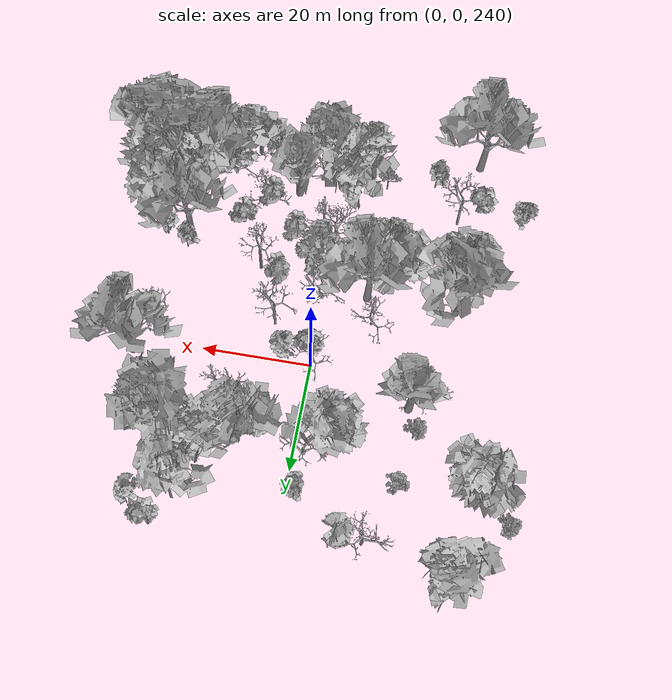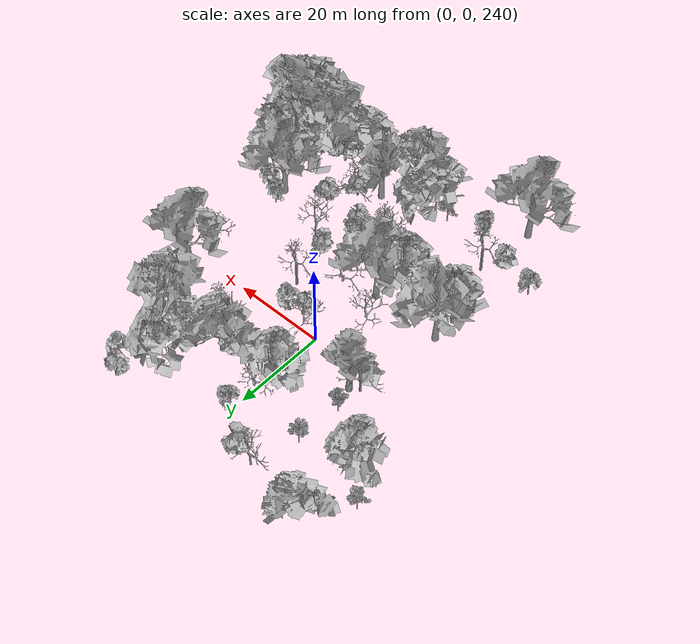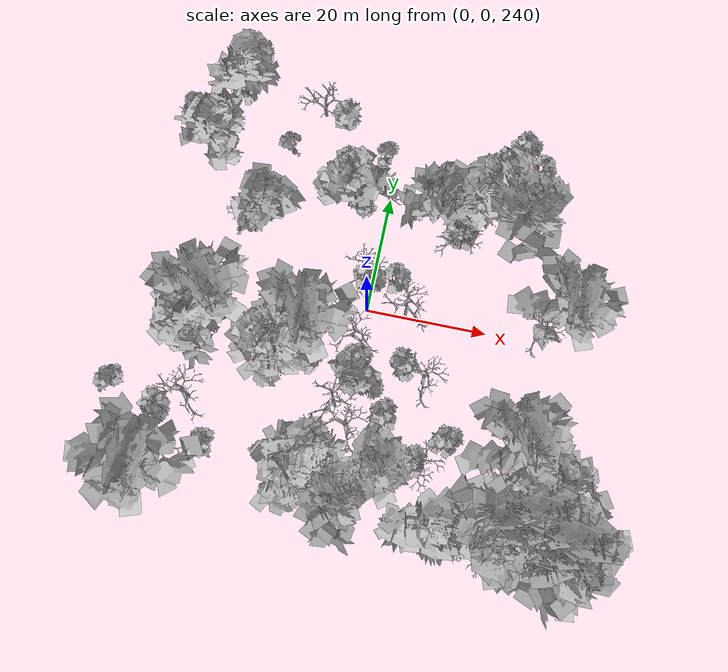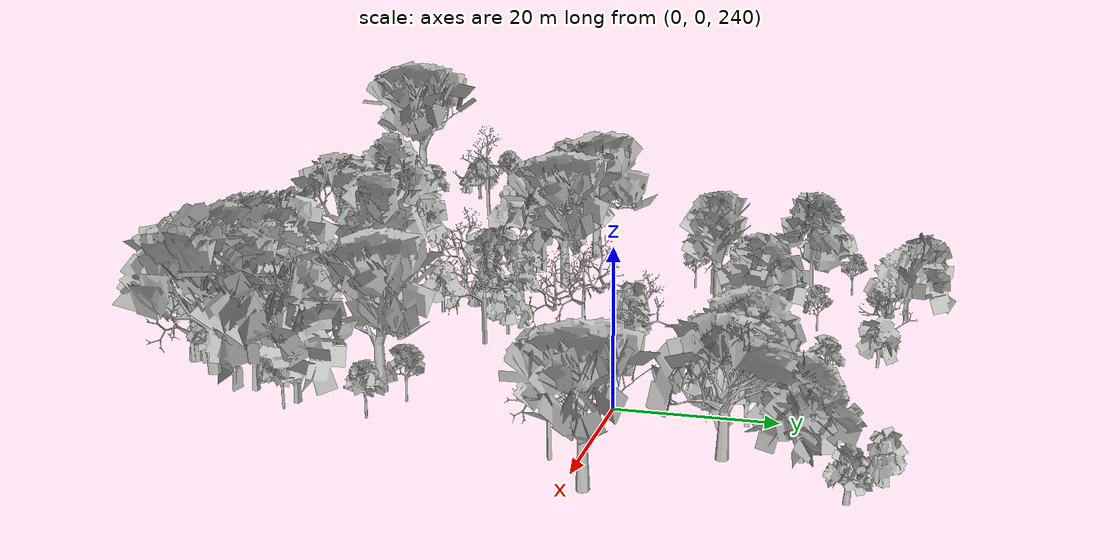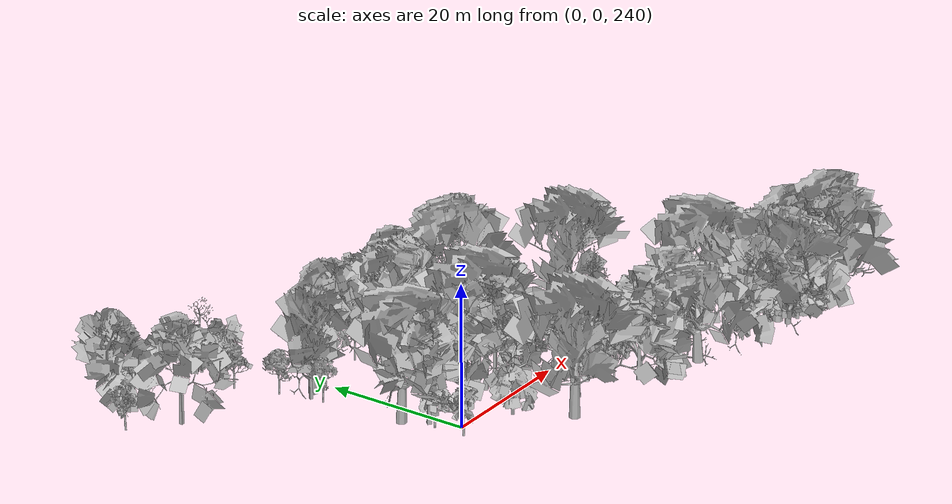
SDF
<sdf version="1.6">
 <world name="default">
  <light name="sun" type="directional">
   <pose>0 0 10 0 -0 0</pose>
   <diffuse>0.8 0.8 0.8 1</diffuse>
   <specular>0.2 0.2 0.2 1</specular>
   <attenuation>
    <range>1000</range>
    <constant>0.9</constant>
    <linear>0.01</linear>
    <quadratic>0.001</quadratic>
   </attenuation>
   <direction>-0.5 0.1 -0.9</direction>
  </light>
  <scene>
   <sky><clouds><speed>12</speed></clouds></sky>
   <ambient>0.4 0.4 0.4 1</ambient>
   <background>0.7 0.7 0.7 1</background>
   <shadows>1</shadows>
  </scene>
  <spherical_coordinates>
   <surface_model>EARTH_WGS84</surface_model>
   <latitude_deg>47.3977</latitude_deg>
   <longitude_deg>8.54559</longitude_deg>
   <elevation>0</elevation>
   <heading_deg>0</heading_deg>
  </spherical_coordinates>
  <physics name="default_physics" default="0" type="ode">
   <ode>
    <solver>
     <type>quick</type>
     <iters>100</iters>
     <sor>1.3</sor>
     <use_dynamic_moi_rescaling>0</use_dynamic_moi_rescaling>
    </solver>
    <constraints>
     <cfm>0</cfm>
     <erp>0.2</erp>
     <contact_max_correcting_vel>100</contact_max_correcting_vel>
     <contact_surface_layer>0.001</contact_surface_layer>
    </constraints>
   </ode>
   <max_step_size>0.002</max_step_size>
   <real_time_factor>1</real_time_factor>
   <real_time_update_rate>500</real_time_update_rate>
  </physics>
  <gravity>0 0 -9.8</gravity>
  <magnetic_field>6e-06 2.3e-05 -4.2e-05</magnetic_field>
  <atmosphere type="adiabatic"/>
  <model name="my_mesh0">
   <pose>29.3973 -32.3156 253.181 0 0 -0.990236</pose>
   <static>1</static>
   <link name="body">
    <visual name="visual">
     <geometry><mesh><uri>model://trees/9.dae</uri><scale>1 1 1</scale></mesh></geometry>
    </visual>
    <collision name="collision">
     <geometry><mesh><uri>model://trees/9.dae</uri><scale>1 1 1</scale></mesh></geometry>
    </collision>
   </link>
  </model>
  <model name="my_mesh1">
   <pose>13.5354 -33.5738 256.813 0 0 -1.50078</pose>
   <static>1</static>
   <link name="body">
    <visual name="visual">
     <geometry><mesh><uri>model://trees/18.dae</uri><scale>1 1 1</scale></mesh></geometry>
    </visual>
    <collision name="collision">
     <geometry><mesh><uri>model://trees/18.dae</uri><scale>1 1 1</scale></mesh></geometry>
    </collision>
   </link>
  </model>
  <model name="my_mesh2">
   <pose>2.16169 -29.9533 256.47 0 -0 0.952976</pose>
   <static>1</static>
   <link name="body">
    <visual name="visual">
     <geometry><mesh><uri>model://trees/19.dae</uri><scale>1 1 1</scale></mesh></geometry>
    </visual>
    <collision name="collision">
     <geometry><mesh><uri>model://trees/19.dae</uri><scale>1 1 1</scale></mesh></geometry>
    </collision>
   </link>
  </model>
  <model name="my_mesh3">
   <pose>25.3439 -29.4933 253.475 0 -0 1.00669</pose>
   <static>1</static>
   <link name="body">
    <visual name="visual">
     <geometry><mesh><uri>model://trees/15.dae</uri><scale>1 1 1</scale></mesh></geometry>
    </visual>
    <collision name="collision">
     <geometry><mesh><uri>model://trees/15.dae</uri><scale>1 1 1</scale></mesh></geometry>
    </collision>
   </link>
  </model>
  <model name="my_mesh4">
   <pose>28.3731 -34.0866 254.223 0 0 -0.948619</pose>
   <static>1</static>
   <link name="body">
    <visual name="visual">
     <geometry><mesh><uri>model://trees/5.dae</uri><scale>1 1 1</scale></mesh></geometry>
    </visual>
    <collision name="collision">
     <geometry><mesh><uri>model://trees/5.dae</uri><scale>1 1 1</scale></mesh></geometry>
    </collision>
   </link>
  </model>
  <model name="my_mesh5">
   <pose>29.9342 -32.0191 252.868 0 -0 0.725675</pose>
   <static>1</static>
   <link name="body">
    <visual name="visual">
     <geometry><mesh><uri>model://trees/2.dae</uri><scale>1 1 1</scale></mesh></geometry>
    </visual>
    <collision name="collision">
     <geometry><mesh><uri>model://trees/2.dae</uri><scale>1 1 1</scale></mesh></geometry>
    </collision>
   </link>
  </model>
  <model name="my_mesh6">
   <pose>23.3303 -32.031 254.628 0 0 -1.36659</pose>
   <static>1</static>
   <link name="body">
    <visual name="visual">
     <geometry><mesh><uri>model://trees/9.dae</uri><scale>1 1 1</scale></mesh></geometry>
    </visual>
    <collision name="collision">
     <geometry><mesh><uri>model://trees/9.dae</uri><scale>1 1 1</scale></mesh></geometry>
    </collision>
   </link>
  </model>
  <model name="my_mesh7">
   <pose>26.8357 -29.52 253.103 0 -0 0.339973</pose>
   <static>1</static>
   <link name="body">
    <visual name="visual">
     <geometry><mesh><uri>model://trees/0.dae</uri><scale>1 1 1</scale></mesh></geometry>
    </visual>
    <collision name="collision">
     <geometry><mesh><uri>model://trees/0.dae</uri><scale>1 1 1</scale></mesh></geometry>
    </collision>
   </link>
  </model>
  <model name="my_mesh8">
   <pose>33.6051 -34.8981 254.263 0 -0 0.280748</pose>
   <static>1</static>
   <link name="body">
    <visual name="visual">
     <geometry><mesh><uri>model://trees/9.dae</uri><scale>1 1 1</scale></mesh></geometry>
    </visual>
    <collision name="collision">
     <geometry><mesh><uri>model://trees/9.dae</uri><scale>1 1 1</scale></mesh></geometry>
    </collision>
   </link>
  </model>
  <model name="my_mesh9">
   <pose>12.0635 -33.56 256.786 0 0 -0.750918</pose>
   <static>1</static>
   <link name="body">
    <visual name="visual">
     <geometry><mesh><uri>model://trees/6.dae</uri><scale>1 1 1</scale></mesh></geometry>
    </visual>
    <collision name="collision">
     <geometry><mesh><uri>model://trees/6.dae</uri><scale>1 1 1</scale></mesh></geometry>
    </collision>
   </link>
  </model>
  <model name="my_mesh10">
   <pose>24.2425 -34.3203 255.132 0 0 -0.202786</pose>
   <static>1</static>
   <link name="body">
    <visual name="visual">
     <geometry><mesh><uri>model://trees/17.dae</uri><scale>1 1 1</scale></mesh></geometry>
    </visual>
    <collision name="collision">
     <geometry><mesh><uri>model://trees/17.dae</uri><scale>1 1 1</scale></mesh></geometry>
    </collision>
   </link>
  </model>
  <model name="my_mesh11">
   <pose>27.1943 -30.6651 253.295 0 0 -0.532978</pose>
   <static>1</static>
   <link name="body">
    <visual name="visual">
     <geometry><mesh><uri>model://trees/19.dae</uri><scale>1 1 1</scale></mesh></geometry>
    </visual>
    <collision name="collision">
     <geometry><mesh><uri>model://trees/19.dae</uri><scale>1 1 1</scale></mesh></geometry>
    </collision>
   </link>
  </model>
  <model name="my_mesh12">
   <pose>25.2791 -28.9186 253.288 0 -0 0.288437</pose>
   <static>1</static>
   <link name="body">
    <visual name="visual">
     <geometry><mesh><uri>model://trees/3.dae</uri><scale>1 1 1</scale></mesh></geometry>
    </visual>
    <collision name="collision">
     <geometry><mesh><uri>model://trees/3.dae</uri><scale>1 1 1</scale></mesh></geometry>
    </collision>
   </link>
  </model>
  <model name="my_mesh13">
   <pose>26.316 -30.4162 253.471 0 -0 1.23142</pose>
   <static>1</static>
   <link name="body">
    <visual name="visual">
     <geometry><mesh><uri>model://trees/2.dae</uri><scale>1 1 1</scale></mesh></geometry>
    </visual>
    <collision name="collision">
     <geometry><mesh><uri>model://trees/2.dae</uri><scale>1 1 1</scale></mesh></geometry>
    </collision>
   </link>
  </model>
  <model name="my_mesh14">
   <pose>15.4166 -33.6952 256.72 0 0 -1.44545</pose>
   <static>1</static>
   <link name="body">
    <visual name="visual">
     <geometry><mesh><uri>model://trees/13.dae</uri><scale>1 1 1</scale></mesh></geometry>
    </visual>
    <collision name="collision">
     <geometry><mesh><uri>model://trees/13.dae</uri><scale>1 1 1</scale></mesh></geometry>
    </collision>
   </link>
  </model>
  <model name="my_mesh15">
   <pose>34.7556 -25.0281 250.431 0 0 -0.568755</pose>
   <static>1</static>
   <link name="body">
    <visual name="visual">
     <geometry><mesh><uri>model://trees/2.dae</uri><scale>1 1 1</scale></mesh></geometry>
    </visual>
    <collision name="collision">
     <geometry><mesh><uri>model://trees/2.dae</uri><scale>1 1 1</scale></mesh></geometry>
    </collision>
   </link>
  </model>
  <model name="my_mesh16">
   <pose>31.6009 -29.2277 251.777 0 0 -1.18603</pose>
   <static>1</static>
   <link name="body">
    <visual name="visual">
     <geometry><mesh><uri>model://trees/9.dae</uri><scale>1 1 1</scale></mesh></geometry>
    </visual>
    <collision name="collision">
     <geometry><mesh><uri>model://trees/9.dae</uri><scale>1 1 1</scale></mesh></geometry>
    </collision>
   </link>
  </model>
  <model name="my_mesh17">
   <pose>20.9339 -34.8507 255.896 0 -0 0.649566</pose>
   <static>1</static>
   <link name="body">
    <visual name="visual">
     <geometry><mesh><uri>model://trees/0.dae</uri><scale>1 1 1</scale></mesh></geometry>
    </visual>
    <collision name="collision">
     <geometry><mesh><uri>model://trees/0.dae</uri><scale>1 1 1</scale></mesh></geometry>
    </collision>
   </link>
  </model>
  <model name="my_mesh18">
   <pose>33.432 -34.1464 253.989 0 -0 1.34274</pose>
   <static>1</static>
   <link name="body">
    <visual name="visual">
     <geometry><mesh><uri>model://trees/16.dae</uri><scale>1 1 1</scale></mesh></geometry>
    </visual>
    <collision name="collision">
     <geometry><mesh><uri>model://trees/16.dae</uri><scale>1 1 1</scale></mesh></geometry>
    </collision>
   </link>
  </model>
  <model name="my_mesh19">
   <pose>34.3925 -30.3513 252.471 0 -0 0.384745</pose>
   <static>1</static>
   <link name="body">
    <visual name="visual">
     <geometry><mesh><uri>model://trees/6.dae</uri><scale>1 1 1</scale></mesh></geometry>
    </visual>
    <collision name="collision">
     <geometry><mesh><uri>model://trees/6.dae</uri><scale>1 1 1</scale></mesh></geometry>
    </collision>
   </link>
  </model>
  <model name="my_mesh20">
   <pose>24.7422 -33.654 254.986 0 -0 0.405412</pose>
   <static>1</static>
   <link name="body">
    <visual name="visual">
     <geometry><mesh><uri>model://trees/13.dae</uri><scale>1 1 1</scale></mesh></geometry>
    </visual>
    <collision name="collision">
     <geometry><mesh><uri>model://trees/13.dae</uri><scale>1 1 1</scale></mesh></geometry>
    </collision>
   </link>
  </model>
  <model name="my_mesh21">
   <pose>33.6361 -28.4734 251.682 0 0 -0.859412</pose>
   <static>1</static>
   <link name="body">
    <visual name="visual">
     <geometry><mesh><uri>model://trees/13.dae</uri><scale>1 1 1</scale></mesh></geometry>
    </visual>
    <collision name="collision">
     <geometry><mesh><uri>model://trees/13.dae</uri><scale>1 1 1</scale></mesh></geometry>
    </collision>
   </link>
  </model>
  <model name="my_mesh22">
   <pose>34.1244 -34.8563 254.327 0 -0 1.04565</pose>
   <static>1</static>
   <link name="body">
    <visual name="visual">
     <geometry><mesh><uri>model://trees/17.dae</uri><scale>1 1 1</scale></mesh></geometry>
    </visual>
    <collision name="collision">
     <geometry><mesh><uri>model://trees/17.dae</uri><scale>1 1 1</scale></mesh></geometry>
    </collision>
   </link>
  </model>
  <model name="my_mesh23">
   <pose>27.8928 -34.6358 254.744 0 0 -0.286216</pose>
   <static>1</static>
   <link name="body">
    <visual name="visual">
     <geometry><mesh><uri>model://trees/4.dae</uri><scale>1 1 1</scale></mesh></geometry>
    </visual>
    <collision name="collision">
     <geometry><mesh><uri>model://trees/4.dae</uri><scale>1 1 1</scale></mesh></geometry>
    </collision>
   </link>
  </model>
  <model name="my_mesh24">
   <pose>33.4213 -33.3952 253.715 0 0 -1.46818</pose>
   <static>1</static>
   <link name="body">
    <visual name="visual">
     <geometry><mesh><uri>model://trees/0.dae</uri><scale>1 1 1</scale></mesh></geometry>
    </visual>
    <collision name="collision">
     <geometry><mesh><uri>model://trees/0.dae</uri><scale>1 1 1</scale></mesh></geometry>
    </collision>
   </link>
  </model>
  <model name="my_mesh25">
   <pose>28.4856 -30.6953 252.901 0 0 -1.12124</pose>
   <static>1</static>
   <link name="body">
    <visual name="visual">
     <geometry><mesh><uri>model://trees/16.dae</uri><scale>1 1 1</scale></mesh></geometry>
    </visual>
    <collision name="collision">
     <geometry><mesh><uri>model://trees/16.dae</uri><scale>1 1 1</scale></mesh></geometry>
    </collision>
   </link>
  </model>
  <model name="my_mesh26">
   <pose>26.3269 -30.5638 253.471 0 -0 0.717491</pose>
   <static>1</static>
   <link name="body">
    <visual name="visual">
     <geometry><mesh><uri>model://trees/13.dae</uri><scale>1 1 1</scale></mesh></geometry>
    </visual>
    <collision name="collision">
     <geometry><mesh><uri>model://trees/13.dae</uri><scale>1 1 1</scale></mesh></geometry>
    </collision>
   </link>
  </model>
  <model name="my_mesh27">
   <pose>25.8426 -18.5224 249.721 0 0 -0.853096</pose>
   <static>1</static>
   <link name="body">
    <visual name="visual">
     <geometry><mesh><uri>model://trees/10.dae</uri><scale>1 1 1</scale></mesh></geometry>
    </visual>
    <collision name="collision">
     <geometry><mesh><uri>model://trees/10.dae</uri><scale>1 1 1</scale></mesh></geometry>
    </collision>
   </link>
  </model>
  <model name="my_mesh28">
   <pose>2.55542 -32.97 257.54 0 -0 0.766422</pose>
   <static>1</static>
   <link name="body">
    <visual name="visual">
     <geometry><mesh><uri>model://trees/8.dae</uri><scale>1 1 1</scale></mesh></geometry>
    </visual>
    <collision name="collision">
     <geometry><mesh><uri>model://trees/8.dae</uri><scale>1 1 1</scale></mesh></geometry>
    </collision>
   </link>
  </model>
  <model name="my_mesh29">
   <pose>30.4088 -34.6982 253.979 0 0 -0.36452</pose>
   <static>1</static>
   <link name="body">
    <visual name="visual">
     <geometry><mesh><uri>model://trees/2.dae</uri><scale>1 1 1</scale></mesh></geometry>
    </visual>
    <collision name="collision">
     <geometry><mesh><uri>model://trees/2.dae</uri><scale>1 1 1</scale></mesh></geometry>
    </collision>
   </link>
  </model>
  <model name="my_mesh30">
   <pose>34.3323 -32.5096 253.377 0 -0 0.220051</pose>
   <static>1</static>
   <link name="body">
    <visual name="visual">
     <geometry><mesh><uri>model://trees/10.dae</uri><scale>1 1 1</scale></mesh></geometry>
    </visual>
    <collision name="collision">
     <geometry><mesh><uri>model://trees/10.dae</uri><scale>1 1 1</scale></mesh></geometry>
    </collision>
   </link>
  </model>
  <model name="my_mesh31">
   <pose>18.1305 -31.3046 255.45 0 0 -1.56268</pose>
   <static>1</static>
   <link name="body">
    <visual name="visual">
     <geometry><mesh><uri>model://trees/4.dae</uri><scale>1 1 1</scale></mesh></geometry>
    </visual>
    <collision name="collision">
     <geometry><mesh><uri>model://trees/4.dae</uri><scale>1 1 1</scale></mesh></geometry>
    </collision>
   </link>
  </model>
  <model name="my_mesh32">
   <pose>32.7875 -24.4841 250.435 0 0 -1.03852</pose>
   <static>1</static>
   <link name="body">
    <visual name="visual">
     <geometry><mesh><uri>model://trees/14.dae</uri><scale>1 1 1</scale></mesh></geometry>
    </visual>
    <collision name="collision">
     <geometry><mesh><uri>model://trees/14.dae</uri><scale>1 1 1</scale></mesh></geometry>
    </collision>
   </link>
  </model>
  <model name="my_mesh33">
   <pose>29.6468 -29.866 252.292 0 -0 0.434812</pose>
   <static>1</static>
   <link name="body">
    <visual name="visual">
     <geometry><mesh><uri>model://trees/10.dae</uri><scale>1 1 1</scale></mesh></geometry>
    </visual>
    <collision name="collision">
     <geometry><mesh><uri>model://trees/10.dae</uri><scale>1 1 1</scale></mesh></geometry>
    </collision>
   </link>
  </model>
  <model name="my_mesh34">
   <pose>12.8056 -25.2401 254.175 0 0 -1.47299</pose>
   <static>1</static>
   <link name="body">
    <visual name="visual">
     <geometry><mesh><uri>model://trees/19.dae</uri><scale>1 1 1</scale></mesh></geometry>
    </visual>
    <collision name="collision">
     <geometry><mesh><uri>model://trees/19.dae</uri><scale>1 1 1</scale></mesh></geometry>
    </collision>
   </link>
  </model>
  <model name="my_mesh35">
   <pose>1.12841 -21.1798 253.655 0 -0 0.554213</pose>
   <static>1</static>
   <link name="body">
    <visual name="visual">
     <geometry><mesh><uri>model://trees/19.dae</uri><scale>1 1 1</scale></mesh></geometry>
    </visual>
    <collision name="collision">
     <geometry><mesh><uri>model://trees/19.dae</uri><scale>1 1 1</scale></mesh></geometry>
    </collision>
   </link>
  </model>
  <model name="my_mesh36">
   <pose>-6.45293 -12.5884 253.118 0 -0 0.015053</pose>
   <static>1</static>
   <link name="body">
    <visual name="visual">
     <geometry><mesh><uri>model://trees/0.dae</uri><scale>1 1 1</scale></mesh></geometry>
    </visual>
    <collision name="collision">
     <geometry><mesh><uri>model://trees/0.dae</uri><scale>1 1 1</scale></mesh></geometry>
    </collision>
   </link>
  </model>
  <model name="my_mesh37">
   <pose>-20.1757 6.46585 250.135 0 0 -0.554399</pose>
   <static>1</static>
   <link name="body">
    <visual name="visual">
     <geometry><mesh><uri>model://trees/3.dae</uri><scale>1 1 1</scale></mesh></geometry>
    </visual>
    <collision name="collision">
     <geometry><mesh><uri>model://trees/3.dae</uri><scale>1 1 1</scale></mesh></geometry>
    </collision>
   </link>
  </model>
  <model name="my_mesh38">
   <pose>7.8393 -10.5283 251.01 0 -0 1.50555</pose>
   <static>1</static>
   <link name="body">
    <visual name="visual">
     <geometry><mesh><uri>model://trees/4.dae</uri><scale>1 1 1</scale></mesh></geometry>
    </visual>
    <collision name="collision">
     <geometry><mesh><uri>model://trees/4.dae</uri><scale>1 1 1</scale></mesh></geometry>
    </collision>
   </link>
  </model>
  <model name="my_mesh39">
   <pose>-9.62493 30.5244 244.583 0 -0 0.782857</pose>
   <static>1</static>
   <link name="body">
    <visual name="visual">
     <geometry><mesh><uri>model://trees/5.dae</uri><scale>1 1 1</scale></mesh></geometry>
    </visual>
    <collision name="collision">
     <geometry><mesh><uri>model://trees/5.dae</uri><scale>1 1 1</scale></mesh></geometry>
    </collision>
   </link>
  </model>
  <model name="my_mesh40">
   <pose>-2.25926 18.8097 245.871 0 -0 1.3117</pose>
   <static>1</static>
   <link name="body">
    <visual name="visual">
     <geometry><mesh><uri>model://trees/18.dae</uri><scale>1 1 1</scale></mesh></geometry>
    </visual>
    <collision name="collision">
     <geometry><mesh><uri>model://trees/18.dae</uri><scale>1 1 1</scale></mesh></geometry>
    </collision>
   </link>
  </model>
  <model name="my_mesh41">
   <pose>-17.3474 22.6517 246.344 0 -0 0.896172</pose>
   <static>1</static>
   <link name="body">
    <visual name="visual">
     <geometry><mesh><uri>model://trees/3.dae</uri><scale>1 1 1</scale></mesh></geometry>
    </visual>
    <collision name="collision">
     <geometry><mesh><uri>model://trees/3.dae</uri><scale>1 1 1</scale></mesh></geometry>
    </collision>
   </link>
  </model>
  <model name="my_mesh42">
   <pose>-25.2197 -13.8485 254.703 0 0 -0.128515</pose>
   <static>1</static>
   <link name="body">
    <visual name="visual">
     <geometry><mesh><uri>model://trees/2.dae</uri><scale>1 1 1</scale></mesh></geometry>
    </visual>
    <collision name="collision">
     <geometry><mesh><uri>model://trees/2.dae</uri><scale>1 1 1</scale></mesh></geometry>
    </collision>
   </link>
  </model>
  <model name="my_mesh43">
   <pose>0.609967 -14.452 252.371 0 0 -1.5378</pose>
   <static>1</static>
   <link name="body">
    <visual name="visual">
     <geometry><mesh><uri>model://trees/7.dae</uri><scale>1 1 1</scale></mesh></geometry>
    </visual>
    <collision name="collision">
     <geometry><mesh><uri>model://trees/7.dae</uri><scale>1 1 1</scale></mesh></geometry>
    </collision>
   </link>
  </model>
  <model name="my_mesh44">
   <pose>-29.9743 20.7977 247.186 0 -0 0.804215</pose>
   <static>1</static>
   <link name="body">
    <visual name="visual">
     <geometry><mesh><uri>model://trees/15.dae</uri><scale>1 1 1</scale></mesh></geometry>
    </visual>
    <collision name="collision">
     <geometry><mesh><uri>model://trees/15.dae</uri><scale>1 1 1</scale></mesh></geometry>
    </collision>
   </link>
  </model>
  <model name="my_mesh45">
   <pose>19.2746 -29.6999 254.951 0 -0 1.13894</pose>
   <static>1</static>
   <link name="body">
    <visual name="visual">
     <geometry><mesh><uri>model://trees/19.dae</uri><scale>1 1 1</scale></mesh></geometry>
    </visual>
    <collision name="collision">
     <geometry><mesh><uri>model://trees/19.dae</uri><scale>1 1 1</scale></mesh></geometry>
    </collision>
   </link>
  </model>
  <model name="my_mesh46">
   <pose>-16.9708 -28.7122 259.541 0 -0 0.901331</pose>
   <static>1</static>
   <link name="body">
    <visual name="visual">
     <geometry><mesh><uri>model://trees/6.dae</uri><scale>1 1 1</scale></mesh></geometry>
    </visual>
    <collision name="collision">
     <geometry><mesh><uri>model://trees/6.dae</uri><scale>1 1 1</scale></mesh></geometry>
    </collision>
   </link>
  </model>
  <model name="my_mesh47">
   <pose>-1.00566 -18.6346 253.454 0 0 -0.362233</pose>
   <static>1</static>
   <link name="body">
    <visual name="visual">
     <geometry><mesh><uri>model://trees/17.dae</uri><scale>1 1 1</scale></mesh></geometry>
    </visual>
    <collision name="collision">
     <geometry><mesh><uri>model://trees/17.dae</uri><scale>1 1 1</scale></mesh></geometry>
    </collision>
   </link>
  </model>
  <model name="my_mesh48">
   <pose>24.3882 28.9452 241.746 0 0 -1.29703</pose>
   <static>1</static>
   <link name="body">
    <visual name="visual">
     <geometry><mesh><uri>model://trees/0.dae</uri><scale>1 1 1</scale></mesh></geometry>
    </visual>
    <collision name="collision">
     <geometry><mesh><uri>model://trees/0.dae</uri><scale>1 1 1</scale></mesh></geometry>
    </collision>
   </link>
  </model>
  <model name="my_mesh49">
   <pose>-19.5252 8.8118 249.71 0 0 -1.31164</pose>
   <static>1</static>
   <link name="body">
    <visual name="visual">
     <geometry><mesh><uri>model://trees/17.dae</uri><scale>1 1 1</scale></mesh></geometry>
    </visual>
    <collision name="collision">
     <geometry><mesh><uri>model://trees/17.dae</uri><scale>1 1 1</scale></mesh></geometry>
    </collision>
   </link>
  </model>
  <model name="my_mesh50">
   <pose>6.13391 16.3961 245.823 0 -0 0.711641</pose>
   <static>1</static>
   <link name="body">
    <visual name="visual">
     <geometry><mesh><uri>model://trees/1.dae</uri><scale>1 1 1</scale></mesh></geometry>
    </visual>
    <collision name="collision">
     <geometry><mesh><uri>model://trees/1.dae</uri><scale>1 1 1</scale></mesh></geometry>
    </collision>
   </link>
  </model>
  <model name="my_mesh51">
   <pose>-27.4351 33.4992 245.54 0 0 -1.00539</pose>
   <static>1</static>
   <link name="body">
    <visual name="visual">
     <geometry><mesh><uri>model://trees/13.dae</uri><scale>1 1 1</scale></mesh></geometry>
    </visual>
    <collision name="collision">
     <geometry><mesh><uri>model://trees/13.dae</uri><scale>1 1 1</scale></mesh></geometry>
    </collision>
   </link>
  </model>
  <model name="my_mesh52">
   <pose>-5.30969 16.6142 246.717 0 -0 1.37014</pose>
   <static>1</static>
   <link name="body">
    <visual name="visual">
     <geometry><mesh><uri>model://trees/14.dae</uri><scale>1 1 1</scale></mesh></geometry>
    </visual>
    <collision name="collision">
     <geometry><mesh><uri>model://trees/14.dae</uri><scale>1 1 1</scale></mesh></geometry>
    </collision>
   </link>
  </model>
  <model name="my_mesh53">
   <pose>-8.28703 -8.04656 252.512 0 0 -1.06988</pose>
   <static>1</static>
   <link name="body">
    <visual name="visual">
     <geometry><mesh><uri>model://trees/10.dae</uri><scale>1 1 1</scale></mesh></geometry>
    </visual>
    <collision name="collision">
     <geometry><mesh><uri>model://trees/10.dae</uri><scale>1 1 1</scale></mesh></geometry>
    </collision>
   </link>
  </model>
  <model name="my_mesh54">
   <pose>3.07031 -14.3789 252.053 0 0 -0.994216</pose>
   <static>1</static>
   <link name="body">
    <visual name="visual">
     <geometry><mesh><uri>model://trees/4.dae</uri><scale>1 1 1</scale></mesh></geometry>
    </visual>
    <collision name="collision">
     <geometry><mesh><uri>model://trees/4.dae</uri><scale>1 1 1</scale></mesh></geometry>
    </collision>
   </link>
  </model>
  <model name="my_mesh55">
   <pose>-0.7369 3.7235 249.757 0 0 -0.119361</pose>
   <static>1</static>
   <link name="body">
    <visual name="visual">
     <geometry><mesh><uri>model://trees/18.dae</uri><scale>1 1 1</scale></mesh></geometry>
    </visual>
    <collision name="collision">
     <geometry><mesh><uri>model://trees/18.dae</uri><scale>1 1 1</scale></mesh></geometry>
    </collision>
   </link>
  </model>
  <model name="my_mesh56">
   <pose>6.20823 -18.9254 252.608 0 -0 0.889864</pose>
   <static>1</static>
   <link name="body">
    <visual name="visual">
     <geometry><mesh><uri>model://trees/4.dae</uri><scale>1 1 1</scale></mesh></geometry>
    </visual>
    <collision name="collision">
     <geometry><mesh><uri>model://trees/4.dae</uri><scale>1 1 1</scale></mesh></geometry>
    </collision>
   </link>
  </model>
  <model name="my_mesh57">
   <pose>11.1343 -12.1996 250.751 0 -0 0.25447</pose>
   <static>1</static>
   <link name="body">
    <visual name="visual">
     <geometry><mesh><uri>model://trees/16.dae</uri><scale>1 1 1</scale></mesh></geometry>
    </visual>
    <collision name="collision">
     <geometry><mesh><uri>model://trees/16.dae</uri><scale>1 1 1</scale></mesh></geometry>
    </collision>
   </link>
  </model>
  <model name="my_mesh58">
   <pose>-23.2208 -7.5719 252.767 0 0 -0.488324</pose>
   <static>1</static>
   <link name="body">
    <visual name="visual">
     <geometry><mesh><uri>model://trees/10.dae</uri><scale>1 1 1</scale></mesh></geometry>
    </visual>
    <collision name="collision">
     <geometry><mesh><uri>model://trees/10.dae</uri><scale>1 1 1</scale></mesh></geometry>
    </collision>
   </link>
  </model>
  <model name="my_mesh59">
   <pose>-24.2579 -32.7876 261.18 0 0 -1.35864</pose>
   <static>1</static>
   <link name="body">
    <visual name="visual">
     <geometry><mesh><uri>model://trees/10.dae</uri><scale>1 1 1</scale></mesh></geometry>
    </visual>
    <collision name="collision">
     <geometry><mesh><uri>model://trees/10.dae</uri><scale>1 1 1</scale></mesh></geometry>
    </collision>
   </link>
  </model>
  <model name="my_mesh60">
   <pose>20.8158 32.267 242.29 0 0 -0.234025</pose>
   <static>1</static>
   <link name="body">
    <visual name="visual">
     <geometry><mesh><uri>model://trees/4.dae</uri><scale>1 1 1</scale></mesh></geometry>
    </visual>
    <collision name="collision">
     <geometry><mesh><uri>model://trees/4.dae</uri><scale>1 1 1</scale></mesh></geometry>
    </collision>
   </link>
  </model>
  <model name="my_mesh61">
   <pose>11.4616 -24.8574 253.877 0 -0 0.706532</pose>
   <static>1</static>
   <link name="body">
    <visual name="visual">
     <geometry><mesh><uri>model://trees/4.dae</uri><scale>1 1 1</scale></mesh></geometry>
    </visual>
    <collision name="collision">
     <geometry><mesh><uri>model://trees/4.dae</uri><scale>1 1 1</scale></mesh></geometry>
    </collision>
   </link>
  </model>
  <model name="my_mesh62">
   <pose>8.07388 16.6243 245.787 0 0 -0.458561</pose>
   <static>1</static>
   <link name="body">
    <visual name="visual">
     <geometry><mesh><uri>model://trees/8.dae</uri><scale>1 1 1</scale></mesh></geometry>
    </visual>
    <collision name="collision">
     <geometry><mesh><uri>model://trees/8.dae</uri><scale>1 1 1</scale></mesh></geometry>
    </collision>
   </link>
  </model>
  <model name="my_mesh63">
   <pose>-32.1127 -22.8456 259.203 0 0 -0.185679</pose>
   <static>1</static>
   <link name="body">
    <visual name="visual">
     <geometry><mesh><uri>model://trees/6.dae</uri><scale>1 1 1</scale></mesh></geometry>
    </visual>
    <collision name="collision">
     <geometry><mesh><uri>model://trees/6.dae</uri><scale>1 1 1</scale></mesh></geometry>
    </collision>
   </link>
  </model>
  <model name="my_mesh64">
   <pose>-23.6193 -11.9299 253.999 0 -0 0.041726</pose>
   <static>1</static>
   <link name="body">
    <visual name="visual">
     <geometry><mesh><uri>model://trees/14.dae</uri><scale>1 1 1</scale></mesh></geometry>
    </visual>
    <collision name="collision">
     <geometry><mesh><uri>model://trees/14.dae</uri><scale>1 1 1</scale></mesh></geometry>
    </collision>
   </link>
  </model>
  <model name="my_mesh65">
   <pose>27.7664 -0.039108 244.801 0 0 -0.154257</pose>
   <static>1</static>
   <link name="body">
    <visual name="visual">
     <geometry><mesh><uri>model://trees/16.dae</uri><scale>1 1 1</scale></mesh></geometry>
    </visual>
    <collision name="collision">
     <geometry><mesh><uri>model://trees/16.dae</uri><scale>1 1 1</scale></mesh></geometry>
    </collision>
   </link>
  </model>
  <model name="my_mesh66">
   <pose>0.815448 -11.0154 252.109 0 -0 0.391143</pose>
   <static>1</static>
   <link name="body">
    <visual name="visual">
     <geometry><mesh><uri>model://trees/0.dae</uri><scale>1 1 1</scale></mesh></geometry>
    </visual>
    <collision name="collision">
     <geometry><mesh><uri>model://trees/0.dae</uri><scale>1 1 1</scale></mesh></geometry>
    </collision>
   </link>
  </model>
  <model name="my_mesh67">
   <pose>-1.64761 24.7532 244.497 0 -0 0.5509</pose>
   <static>1</static>
   <link name="body">
    <visual name="visual">
     <geometry><mesh><uri>model://trees/6.dae</uri><scale>1 1 1</scale></mesh></geometry>
    </visual>
    <collision name="collision">
     <geometry><mesh><uri>model://trees/6.dae</uri><scale>1 1 1</scale></mesh></geometry>
    </collision>
   </link>
  </model>
  <model name="my_mesh68">
   <pose>-34.3639 26.0727 246.635 0 0 -0.890651</pose>
   <static>1</static>
   <link name="body">
    <visual name="visual">
     <geometry><mesh><uri>model://trees/3.dae</uri><scale>1 1 1</scale></mesh></geometry>
    </visual>
    <collision name="collision">
     <geometry><mesh><uri>model://trees/3.dae</uri><scale>1 1 1</scale></mesh></geometry>
    </collision>
   </link>
  </model>
  <model name="my_mesh69">
   <pose>22.6841 16.462 244.435 0 -0 0.957913</pose>
   <static>1</static>
   <link name="body">
    <visual name="visual">
     <geometry><mesh><uri>model://trees/9.dae</uri><scale>1 1 1</scale></mesh></geometry>
    </visual>
    <collision name="collision">
     <geometry><mesh><uri>model://trees/9.dae</uri><scale>1 1 1</scale></mesh></geometry>
    </collision>
   </link>
  </model>
  <model name="my_mesh70">
   <pose>12.9964 11.6869 246.538 0 0 -0.946601</pose>
   <static>1</static>
   <link name="body">
    <visual name="visual">
     <geometry><mesh><uri>model://trees/17.dae</uri><scale>1 1 1</scale></mesh></geometry>
    </visual>
    <collision name="collision">
     <geometry><mesh><uri>model://trees/17.dae</uri><scale>1 1 1</scale></mesh></geometry>
    </collision>
   </link>
  </model>
  <model name="my_mesh71">
   <pose>13.0461 13.0533 246.379 0 -0 0.495902</pose>
   <static>1</static>
   <link name="body">
    <visual name="visual">
     <geometry><mesh><uri>model://trees/4.dae</uri><scale>1 1 1</scale></mesh></geometry>
    </visual>
    <collision name="collision">
     <geometry><mesh><uri>model://trees/4.dae</uri><scale>1 1 1</scale></mesh></geometry>
    </collision>
   </link>
  </model>
  <model name="my_mesh72">
   <pose>-27.0257 31.2428 245.9 0 -0 0.039135</pose>
   <static>1</static>
   <link name="body">
    <visual name="visual">
     <geometry><mesh><uri>model://trees/0.dae</uri><scale>1 1 1</scale></mesh></geometry>
    </visual>
    <collision name="collision">
     <geometry><mesh><uri>model://trees/0.dae</uri><scale>1 1 1</scale></mesh></geometry>
    </collision>
   </link>
  </model>
  <model name="my_mesh73">
   <pose>11.9318 13.5135 246.27 0 0 -0.785419</pose>
   <static>1</static>
   <link name="body">
    <visual name="visual">
     <geometry><mesh><uri>model://trees/2.dae</uri><scale>1 1 1</scale></mesh></geometry>
    </visual>
    <collision name="collision">
     <geometry><mesh><uri>model://trees/2.dae</uri><scale>1 1 1</scale></mesh></geometry>
    </collision>
   </link>
  </model>
  <model name="my_mesh74">
   <pose>-11.6233 -11.7682 253.554 0 -0 1.31398</pose>
   <static>1</static>
   <link name="body">
    <visual name="visual">
     <geometry><mesh><uri>model://trees/14.dae</uri><scale>1 1 1</scale></mesh></geometry>
    </visual>
    <collision name="collision">
     <geometry><mesh><uri>model://trees/14.dae</uri><scale>1 1 1</scale></mesh></geometry>
    </collision>
   </link>
  </model>
  <model name="my_mesh75">
   <pose>-2.44174 -27.8895 256.181 0 0 -0.34088</pose>
   <static>1</static>
   <link name="body">
    <visual name="visual">
     <geometry><mesh><uri>model://trees/13.dae</uri><scale>1 1 1</scale></mesh></geometry>
    </visual>
    <collision name="collision">
     <geometry><mesh><uri>model://trees/13.dae</uri><scale>1 1 1</scale></mesh></geometry>
    </collision>
   </link>
  </model>
  <model name="my_mesh76">
   <pose>13.0008 19.2082 244.895 0 0 -0.665355</pose>
   <static>1</static>
   <link name="body">
    <visual name="visual">
     <geometry><mesh><uri>model://trees/17.dae</uri><scale>1 1 1</scale></mesh></geometry>
    </visual>
    <collision name="collision">
     <geometry><mesh><uri>model://trees/17.dae</uri><scale>1 1 1</scale></mesh></geometry>
    </collision>
   </link>
  </model>
  <model name="my_mesh77">
   <pose>-3.8426 13.8068 247.338 0 0 -1.34414</pose>
   <static>1</static>
   <link name="body">
    <visual name="visual">
     <geometry><mesh><uri>model://trees/6.dae</uri><scale>1 1 1</scale></mesh></geometry>
    </visual>
    <collision name="collision">
     <geometry><mesh><uri>model://trees/6.dae</uri><scale>1 1 1</scale></mesh></geometry>
    </collision>
   </link>
  </model>
  <model name="my_mesh78">
   <pose>-13.4701 31.0525 244.7 0 0 -1.53538</pose>
   <static>1</static>
   <link name="body">
    <visual name="visual">
     <geometry><mesh><uri>model://trees/17.dae</uri><scale>1 1 1</scale></mesh></geometry>
    </visual>
    <collision name="collision">
     <geometry><mesh><uri>model://trees/17.dae</uri><scale>1 1 1</scale></mesh></geometry>
    </collision>
   </link>
  </model>
  <model name="my_mesh79">
   <pose>30.2885 -18.356 248.443 0 0 -0.930762</pose>
   <static>1</static>
   <link name="body">
    <visual name="visual">
     <geometry><mesh><uri>model://trees/2.dae</uri><scale>1 1 1</scale></mesh></geometry>
    </visual>
    <collision name="collision">
     <geometry><mesh><uri>model://trees/2.dae</uri><scale>1 1 1</scale></mesh></geometry>
    </collision>
   </link>
  </model>
  <model name="my_mesh80">
   <pose>15.9672 -20.6351 252.402 0 -0 0.21268</pose>
   <static>1</static>
   <link name="body">
    <visual name="visual">
     <geometry><mesh><uri>model://trees/4.dae</uri><scale>1 1 1</scale></mesh></geometry>
    </visual>
    <collision name="collision">
     <geometry><mesh><uri>model://trees/4.dae</uri><scale>1 1 1</scale></mesh></geometry>
    </collision>
   </link>
  </model>
  <model name="my_mesh81">
   <pose>27.1151 -34.7492 254.844 0 0 -0.825919</pose>
   <static>1</static>
   <link name="body">
    <visual name="visual">
     <geometry><mesh><uri>model://trees/1.dae</uri><scale>1 1 1</scale></mesh></geometry>
    </visual>
    <collision name="collision">
     <geometry><mesh><uri>model://trees/1.dae</uri><scale>1 1 1</scale></mesh></geometry>
    </collision>
   </link>
  </model>
  <model name="my_mesh82">
   <pose>-21.5384 -22.4111 258.151 0 -0 0.894486</pose>
   <static>1</static>
   <link name="body">
    <visual name="visual">
     <geometry><mesh><uri>model://trees/16.dae</uri><scale>1 1 1</scale></mesh></geometry>
    </visual>
    <collision name="collision">
     <geometry><mesh><uri>model://trees/16.dae</uri><scale>1 1 1</scale></mesh></geometry>
    </collision>
   </link>
  </model>
  <model name="my_mesh83">
   <pose>-4.95125 -29.258 257.087 0 0 -0.094363</pose>
   <static>1</static>
   <link name="body">
    <visual name="visual">
     <geometry><mesh><uri>model://trees/15.dae</uri><scale>1 1 1</scale></mesh></geometry>
    </visual>
    <collision name="collision">
     <geometry><mesh><uri>model://trees/15.dae</uri><scale>1 1 1</scale></mesh></geometry>
    </collision>
   </link>
  </model>
  <model name="my_mesh84">
   <pose>14.2694 17.8218 244.921 0 0 -0.64669</pose>
   <static>1</static>
   <link name="body">
    <visual name="visual">
     <geometry><mesh><uri>model://trees/13.dae</uri><scale>1 1 1</scale></mesh></geometry>
    </visual>
    <collision name="collision">
     <geometry><mesh><uri>model://trees/13.dae</uri><scale>1 1 1</scale></mesh></geometry>
    </collision>
   </link>
  </model>
  <model name="my_mesh85">
   <pose>18.177 24.0305 243.076 0 -0 0.661529</pose>
   <static>1</static>
   <link name="body">
    <visual name="visual">
     <geometry><mesh><uri>model://trees/12.dae</uri><scale>1 1 1</scale></mesh></geometry>
    </visual>
    <collision name="collision">
     <geometry><mesh><uri>model://trees/12.dae</uri><scale>1 1 1</scale></mesh></geometry>
    </collision>
   </link>
  </model>
  <model name="my_mesh86">
   <pose>6.86842 -26.7501 254.941 0 -0 0.392699</pose>
   <static>1</static>
   <link name="body">
    <visual name="visual">
     <geometry><mesh><uri>model://trees/11.dae</uri><scale>1 1 1</scale></mesh></geometry>
    </visual>
    <collision name="collision">
     <geometry><mesh><uri>model://trees/11.dae</uri><scale>1 1 1</scale></mesh></geometry>
    </collision>
   </link>
  </model>
  <model name="my_mesh87">
   <pose>-8.67406 -28.1783 257.994 0 0 -1.47703</pose>
   <static>1</static>
   <link name="body">
    <visual name="visual">
     <geometry><mesh><uri>model://trees/3.dae</uri><scale>1 1 1</scale></mesh></geometry>
    </visual>
    <collision name="collision">
     <geometry><mesh><uri>model://trees/3.dae</uri><scale>1 1 1</scale></mesh></geometry>
    </collision>
   </link>
  </model>
  <model name="my_mesh88">
   <pose>-0.593115 -7.25936 251.812 0 -0 1.22401</pose>
   <static>1</static>
   <link name="body">
    <visual name="visual">
     <geometry><mesh><uri>model://trees/19.dae</uri><scale>1 1 1</scale></mesh></geometry>
    </visual>
    <collision name="collision">
     <geometry><mesh><uri>model://trees/19.dae</uri><scale>1 1 1</scale></mesh></geometry>
    </collision>
   </link>
  </model>
  <model name="my_mesh89">
   <pose>-19.0148 14.1651 248.597 0 0 -0.100294</pose>
   <static>1</static>
   <link name="body">
    <visual name="visual">
     <geometry><mesh><uri>model://trees/3.dae</uri><scale>1 1 1</scale></mesh></geometry>
    </visual>
    <collision name="collision">
     <geometry><mesh><uri>model://trees/3.dae</uri><scale>1 1 1</scale></mesh></geometry>
    </collision>
   </link>
  </model>
  <model name="my_mesh90">
   <pose>-9.66741 -3.64068 251.673 0 -0 0.081845</pose>
   <static>1</static>
   <link name="body">
    <visual name="visual">
     <geometry><mesh><uri>model://trees/19.dae</uri><scale>1 1 1</scale></mesh></geometry>
    </visual>
    <collision name="collision">
     <geometry><mesh><uri>model://trees/19.dae</uri><scale>1 1 1</scale></mesh></geometry>
    </collision>
   </link>
  </model>
  <model name="my_mesh91">
   <pose>4.19982 3.06696 249.41 0 0 -0.557461</pose>
   <static>1</static>
   <link name="body">
    <visual name="visual">
     <geometry><mesh><uri>model://trees/1.dae</uri><scale>1 1 1</scale></mesh></geometry>
    </visual>
    <collision name="collision">
     <geometry><mesh><uri>model://trees/1.dae</uri><scale>1 1 1</scale></mesh></geometry>
    </collision>
   </link>
  </model>
  <model name="my_mesh92">
   <pose>-25.0989 -24.8259 259.591 0 0 -1.42515</pose>
   <static>1</static>
   <link name="body">
    <visual name="visual">
     <geometry><mesh><uri>model://trees/4.dae</uri><scale>1 1 1</scale></mesh></geometry>
    </visual>
    <collision name="collision">
     <geometry><mesh><uri>model://trees/4.dae</uri><scale>1 1 1</scale></mesh></geometry>
    </collision>
   </link>
  </model>
  <model name="my_mesh93">
   <pose>-17.6989 9.8357 249.515 0 0 -1.31631</pose>
   <static>1</static>
   <link name="body">
    <visual name="visual">
     <geometry><mesh><uri>model://trees/11.dae</uri><scale>1 1 1</scale></mesh></geometry>
    </visual>
    <collision name="collision">
     <geometry><mesh><uri>model://trees/11.dae</uri><scale>1 1 1</scale></mesh></geometry>
    </collision>
   </link>
  </model>
  <model name="my_mesh94">
   <pose>-10.3833 -12.2267 253.529 0 0 -0.308134</pose>
   <static>1</static>
   <link name="body">
    <visual name="visual">
     <geometry><mesh><uri>model://trees/15.dae</uri><scale>1 1 1</scale></mesh></geometry>
    </visual>
    <collision name="collision">
     <geometry><mesh><uri>model://trees/15.dae</uri><scale>1 1 1</scale></mesh></geometry>
    </collision>
   </link>
  </model>
  <model name="my_mesh95">
   <pose>31.0437 4.21717 243.384 0 0 -1.33998</pose>
   <static>1</static>
   <link name="body">
    <visual name="visual">
     <geometry><mesh><uri>model://trees/10.dae</uri><scale>1 1 1</scale></mesh></geometry>
    </visual>
    <collision name="collision">
     <geometry><mesh><uri>model://trees/10.dae</uri><scale>1 1 1</scale></mesh></geometry>
    </collision>
   </link>
  </model>
  <model name="my_mesh96">
   <pose>6.50658 -1.90389 249.898 0 -0 1.0367</pose>
   <static>1</static>
   <link name="body">
    <visual name="visual">
     <geometry><mesh><uri>model://trees/16.dae</uri><scale>1 1 1</scale></mesh></geometry>
    </visual>
    <collision name="collision">
     <geometry><mesh><uri>model://trees/16.dae</uri><scale>1 1 1</scale></mesh></geometry>
    </collision>
   </link>
  </model>
  <model name="my_mesh97">
   <pose>-0.070898 2.13163 250.09 0 0 -0.667767</pose>
   <static>1</static>
   <link name="body">
    <visual name="visual">
     <geometry><mesh><uri>model://trees/4.dae</uri><scale>1 1 1</scale></mesh></geometry>
    </visual>
    <collision name="collision">
     <geometry><mesh><uri>model://trees/4.dae</uri><scale>1 1 1</scale></mesh></geometry>
    </collision>
   </link>
  </model>
  <model name="my_mesh98">
   <pose>25.8073 -15.8417 248.828 0 -0 1.36231</pose>
   <static>1</static>
   <link name="body">
    <visual name="visual">
     <geometry><mesh><uri>model://trees/6.dae</uri><scale>1 1 1</scale></mesh></geometry>
    </visual>
    <collision name="collision">
     <geometry><mesh><uri>model://trees/6.dae</uri><scale>1 1 1</scale></mesh></geometry>
    </collision>
   </link>
  </model>
 </world>
</sdf>
